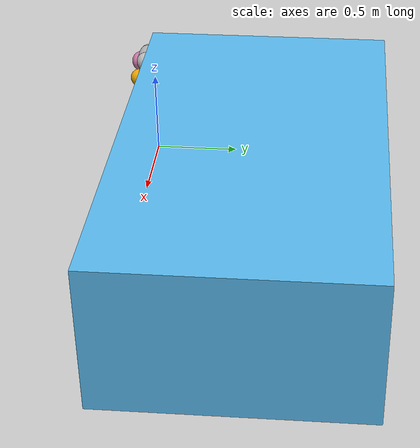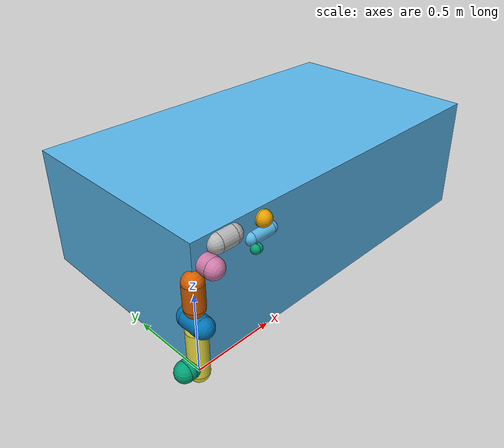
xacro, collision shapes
<?xml version='1.0' encoding='utf-8'?>
<robot xmlns:xacro="http://www.ros.org/wiki/xacro" name="panda">
  <xacro:arg name="hw_interface" default="PositionJointInterface"/>
  <xacro:arg name="xyz" default="0 0 0"/>
  <xacro:arg name="rpy" default="0 0 0"/>
  <xacro:arg name="namespace" default="panda1"/>
  <xacro:arg name="load_table" default="true" />
  <xacro:include filename="$(find franka_description)/robots/panda_arm.xacro" />
  <xacro:include filename="$(find imt_frankas_config)/robots/table.xacro" />
  <link name="world"/>
  <xacro:if value="$(arg load_table)">
      <xacro:table connected_to="world" />
  </xacro:if>
  <xacro:panda_arm arm_id="$(arg namespace)" connected_to="world" hw_interface="$(arg hw_interface)" xyz="$(arg xyz)" rpy="$(arg rpy)"/>

  <gazebo>
    <plugin name="gazebo_ros_control" filename="libgazebo_ros_control.so">
      <robotNamespace>$(arg namespace)</robotNamespace>
      <legacyModeNS>false</legacyModeNS>
    </plugin>
  </gazebo>
</robot>

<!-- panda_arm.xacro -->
<robot xmlns:xacro="http://www.ros.org/wiki/xacro" name="panda">
  <!-- safety_distance: Minimum safety distance in [m] by which the collision volumes are expanded and which is enforced during robot motions -->
  <!-- arm_id: Namespace of the panda arm. Serves to differentiate between arms in case of multiple instances. -->
  <xacro:macro name="panda_arm" params="arm_id:='panda' description_pkg:='franka_description' connected_to:='' xyz:='0 0 0' rpy:='0 0 0' safety_distance:=0">
    <xacro:unless value="${not connected_to}">
      <joint name="${arm_id}_joint_${connected_to}" type="fixed">
        <parent link="${connected_to}"/>
        <child link="${arm_id}_link0"/>
        <origin rpy="${rpy}" xyz="${xyz}"/>
      </joint>
    </xacro:unless>
    <link name="${arm_id}_link0">
      <visual>
        <geometry>
          <mesh filename="package://${description_pkg}/meshes/visual/link0.dae"/>
        </geometry>
      </visual>
      <collision>
        <origin xyz="-0.075 0 0.06" rpy="0 ${pi/2} 0"/>
        <geometry>
          <cylinder radius="${0.06+safety_distance}" length="0.03" />
        </geometry>
      </collision>
      <collision>
        <origin xyz="-0.06 0 0.06" rpy="0 0 0"/>
        <geometry>
          <sphere radius="${0.06+safety_distance}" />
        </geometry>
      </collision>
      <collision>
        <origin xyz="-0.09 0 0.06" rpy="0 0 0"/>
        <geometry>
          <sphere radius="${0.06+safety_distance}" />
        </geometry>
      </collision>
    </link>
    <link name="${arm_id}_link1">
      <visual>
        <geometry>
          <mesh filename="package://${description_pkg}/meshes/visual/link1.dae"/>
        </geometry>
      </visual>
      <collision>
        <origin xyz="0 0 -0.1915" rpy="0 0 0"/>
        <geometry>
          <cylinder radius="${0.06+safety_distance}" length="0.2830" />
        </geometry>
      </collision>
      <collision>
        <origin xyz="0 0 -0.333" rpy="0 0 0"/>
        <geometry>
          <sphere radius="${0.06+safety_distance}" />
        </geometry>
      </collision>
      <collision>
        <origin xyz="0 0 -0.05" rpy="0 0 0"/>
        <geometry>
          <sphere radius="${0.06+safety_distance}" />
        </geometry>
      </collision>
    </link>
    <joint name="${arm_id}_joint1" type="revolute">
      <safety_controller k_position="100.0" k_velocity="40.0" soft_lower_limit="-2.8973" soft_upper_limit="2.8973"/>
      <origin rpy="0 0 0" xyz="0 0 0.333"/>
      <parent link="${arm_id}_link0"/>
      <child link="${arm_id}_link1"/>
      <axis xyz="0 0 1"/>
      <limit effort="87" lower="-2.8973" upper="2.8973" velocity="2.1750"/>
    </joint>
    <link name="${arm_id}_link2">
      <visual>
        <geometry>
          <mesh filename="package://${description_pkg}/meshes/visual/link2.dae"/>
        </geometry>
      </visual>
      <collision>
        <origin xyz="0 0 0" rpy="0 0 0"/>
        <geometry>
          <cylinder radius="${0.06+safety_distance}" length="0.12" />
        </geometry>
      </collision>
      <collision>
        <origin xyz="0 0 -0.06" rpy="0 0 0"/>
        <geometry>
          <sphere radius="${0.06+safety_distance}" />
        </geometry>
      </collision>
      <collision>
        <origin xyz="0 0 0.06" rpy="0 0 0"/>
        <geometry>
          <sphere radius="${0.06+safety_distance}" />
        </geometry>
      </collision>
    </link>
    <joint name="${arm_id}_joint2" type="revolute">
      <safety_controller k_position="100.0" k_velocity="40.0" soft_lower_limit="-1.7628" soft_upper_limit="1.7628"/>
      <origin rpy="${-pi/2} 0 0" xyz="0 0 0"/>
      <parent link="${arm_id}_link1"/>
      <child link="${arm_id}_link2"/>
      <axis xyz="0 0 1"/>
      <limit effort="87" lower="-1.7628" upper="1.7628" velocity="2.1750"/>
    </joint>
    <link name="${arm_id}_link3">
      <visual>
        <geometry>
          <mesh filename="package://${description_pkg}/meshes/visual/link3.dae"/>
        </geometry>
      </visual>
      <collision>
        <origin xyz="0 0 -0.145" rpy="0 0 0"/>
        <geometry>
          <cylinder radius="${0.06+safety_distance}" length="0.15" />
        </geometry>
      </collision>
      <collision>
        <origin xyz="0 0 -0.22" rpy="0 0 0"/>
        <geometry>
          <sphere radius="${0.06+safety_distance}" />
        </geometry>
      </collision>
      <collision>
        <origin xyz="0 0 -0.07" rpy="0 0 0"/>
        <geometry>
          <sphere radius="${0.06+safety_distance}" />
        </geometry>
      </collision>
    </link>
    <joint name="${arm_id}_joint3" type="revolute">
      <safety_controller k_position="100.0" k_velocity="40.0" soft_lower_limit="-2.8973" soft_upper_limit="2.8973"/>
      <origin rpy="${pi/2} 0 0" xyz="0 -0.316 0"/>
      <parent link="${arm_id}_link2"/>
      <child link="${arm_id}_link3"/>
      <axis xyz="0 0 1"/>
      <limit effort="87" lower="-2.8973" upper="2.8973" velocity="2.1750"/>
    </joint>
    <link name="${arm_id}_link4">
      <visual>
        <geometry>
          <mesh filename="package://${description_pkg}/meshes/visual/link4.dae"/>
        </geometry>
      </visual>
      <collision>
        <origin xyz="0 0 0" rpy="0 0 0"/>
        <geometry>
          <cylinder radius="${0.06+safety_distance}" length="0.12" />
        </geometry>
      </collision>
      <collision>
        <origin xyz="0 0 0.06" rpy="0 0 0"/>
        <geometry>
          <sphere radius="${0.06+safety_distance}" />
        </geometry>
      </collision>
      <collision>
        <origin xyz="0 0 -0.06" rpy="0 0 0"/>
        <geometry>
          <sphere radius="${0.06+safety_distance}" />
        </geometry>
      </collision>
    </link>
    <joint name="${arm_id}_joint4" type="revolute">
      <safety_controller k_position="100.0" k_velocity="40.0" soft_lower_limit="-3.0718" soft_upper_limit="-0.0698"/>
      <origin rpy="${pi/2} 0 0" xyz="0.0825 0 0"/>
      <parent link="${arm_id}_link3"/>
      <child link="${arm_id}_link4"/>
      <axis xyz="0 0 1"/>
      <limit effort="87" lower="-3.0718" upper="-0.0698" velocity="2.1750"/>
    </joint>
    <link name="${arm_id}_link5">
      <visual>
        <geometry>
          <mesh filename="package://${description_pkg}/meshes/visual/link5.dae"/>
        </geometry>
      </visual>
      <collision>
        <origin xyz="0 0 -0.26" rpy="0 0 0"/>
        <geometry>
          <cylinder radius="${0.06+safety_distance}" length="0.1" />
        </geometry>
      </collision>
      <collision>
        <origin xyz="0 0 -0.31" rpy="0 0 0"/>
        <geometry>
          <sphere radius="${0.06+safety_distance}" />
        </geometry>
      </collision>
      <collision>
        <origin xyz="0 0 -0.21" rpy="0 0 0"/>
        <geometry>
          <sphere radius="${0.06+safety_distance}" />
        </geometry>
      </collision>
      <collision>
        <origin xyz="0 0.08 -0.13" rpy="0 0 0"/>
        <geometry>
          <cylinder radius="${0.025+safety_distance}" length="0.14" />
        </geometry>
      </collision>
      <collision>
        <origin xyz="0 0.08 -0.06" rpy="0 0 0"/>
        <geometry>
          <sphere radius="${0.025+safety_distance}" />
        </geometry>
      </collision>
      <collision>
        <origin xyz="0 0.08 -0.20" rpy="0 0 0"/>
        <geometry>
          <sphere radius="${0.025+safety_distance}" />
        </geometry>
      </collision>

    </link>
    <joint name="${arm_id}_joint5" type="revolute">
      <safety_controller k_position="100.0" k_velocity="40.0" soft_lower_limit="-2.8973" soft_upper_limit="2.8973"/>
      <origin rpy="${-pi/2} 0 0" xyz="-0.0825 0.384 0"/>
      <parent link="${arm_id}_link4"/>
      <child link="${arm_id}_link5"/>
      <axis xyz="0 0 1"/>
      <limit effort="12" lower="-2.8973" upper="2.8973" velocity="2.6100"/>
    </joint>
    <link name="${arm_id}_link6">
      <visual>
        <geometry>
          <mesh filename="package://${description_pkg}/meshes/visual/link6.dae"/>
        </geometry>
      </visual>
      <collision>
        <origin xyz="0 0 -0.03" rpy="0 0 0"/>
        <geometry>
          <cylinder radius="${0.05+safety_distance}" length="0.08" />
        </geometry>
      </collision>
      <collision>
        <origin xyz="0 0 0.01" rpy="0 0 0"/>
        <geometry>
          <sphere radius="${0.05+safety_distance}" />
        </geometry>
      </collision>
      <collision>
        <origin xyz="0 0 -0.07" rpy="0 0 0"/>
        <geometry>
          <sphere radius="${0.05+safety_distance}" />
        </geometry>
      </collision>
    </link>
    <joint name="${arm_id}_joint6" type="revolute">
      <safety_controller k_position="100.0" k_velocity="40.0" soft_lower_limit="-0.0175" soft_upper_limit="3.7525"/>
      <origin rpy="${pi/2} 0 0" xyz="0 0 0"/>
      <parent link="${arm_id}_link5"/>
      <child link="${arm_id}_link6"/>
      <axis xyz="0 0 1"/>
      <limit effort="12" lower="-0.0175" upper="3.7525" velocity="2.6100"/>
    </joint>
    <link name="${arm_id}_link7">
      <visual>
        <geometry>
          <mesh filename="package://${description_pkg}/meshes/visual/link7.dae"/>
        </geometry>
      </visual>
      <collision>
        <origin xyz="0 0 0.01" rpy="0 0 0"/>
        <geometry>
          <cylinder radius="${0.04+safety_distance}" length="0.14" />
        </geometry>
      </collision>
      <collision>
        <origin xyz="0 0 0.08" rpy="0 0 0"/>
        <geometry>
          <sphere radius="${0.04+safety_distance}"  />
        </geometry>
      </collision>
      <collision>
        <origin xyz="0 0 -0.06" rpy="0 0 0"/>
        <geometry>
          <sphere radius="${0.04+safety_distance}"  />
        </geometry>
      </collision>
    </link>
    <joint name="${arm_id}_joint7" type="revolute">
      <safety_controller k_position="100.0" k_velocity="40.0" soft_lower_limit="-2.8973" soft_upper_limit="2.8973"/>
      <origin rpy="${pi/2} 0 0" xyz="0.088 0 0"/>
      <parent link="${arm_id}_link6"/>
      <child link="${arm_id}_link7"/>
      <axis xyz="0 0 1"/>
      <limit effort="12" lower="-2.8973" upper="2.8973" velocity="2.6100"/>
    </joint>
    <link name="${arm_id}_link8">
      <collision>
        <origin xyz="0.0424 0.0424 -0.0250" rpy="${pi} ${pi/2} ${pi/2}"/>
        <geometry>
          <cylinder radius="${0.03+safety_distance}"  length="0.01" />
        </geometry>
      </collision>
      <collision>
        <origin xyz="0.0424 0.0424 -0.02" rpy="0 0 0"/>
        <geometry>
          <sphere radius="${0.03+safety_distance}"  />
        </geometry>
      </collision>
      <collision>
        <origin xyz="0.0424 0.0424 -0.03" rpy="0 0 0"/>
        <geometry>
          <sphere radius="${0.03+safety_distance}"  />
        </geometry>
      </collision>
    </link>
    <joint name="${arm_id}_joint8" type="fixed">
      <origin rpy="0 0 0" xyz="0 0 0.107"/>
      <parent link="${arm_id}_link7"/>
      <child link="${arm_id}_link8"/>
    </joint>
  </xacro:macro>
</robot>

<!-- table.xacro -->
<robot xmlns:xacro="http://www.ros.org/wiki/xacro" name="table">
  <xacro:macro name="table" params="connected_to:='' length:='2.45' width:='1.4' height:='0.8'">
      <xacro:property name="len" value="${length}" />
      <xacro:property name="wid" value="${width}" />
      <xacro:property name="hei" value="${height}" />

      <xacro:unless value="${not connected_to}">
        <joint name="table_joint_${connected_to}" type="fixed">
          <parent link="${connected_to}"/>
          <child link="table"/>
          <origin rpy="0 0 0" xyz="0 0 ${hei}"/>
        </joint>
      </xacro:unless>

      <link name="table">
        <visual>
          <origin xyz="${len/2.0} ${wid/2.0} ${-hei/2.0}" rpy="0 0 0"/>
          <geometry>
            <box size="${len} ${wid} ${hei}"/>
          </geometry>
        </visual>
        <collision>
          <origin xyz="${len/2.0} ${wid/2.0} ${-hei/2.0}" rpy="0 0 0"/>
          <geometry>
              <box size="${len} ${wid} ${hei}"/>
          </geometry>
        </collision>
        <inertial>
          <mass value="100" />
          <origin rpy="0 0 0" xyz="0 0 0" />
          <inertia ixx="0.1" ixy="0" ixz="0" iyy="0.1" iyz="0" izz="0.1" />
        </inertial>
      </link>
      <gazebo reference="table">
        <kp>1000000.0</kp>
        <kd>1.0</kd>
        <mu1>0.8</mu1>
        <mu2>0.8</mu2>
        <maxVel>0.0</maxVel>
        <minDepth>0.001</minDepth>
      </gazebo>
  </xacro:macro>
</robot>
